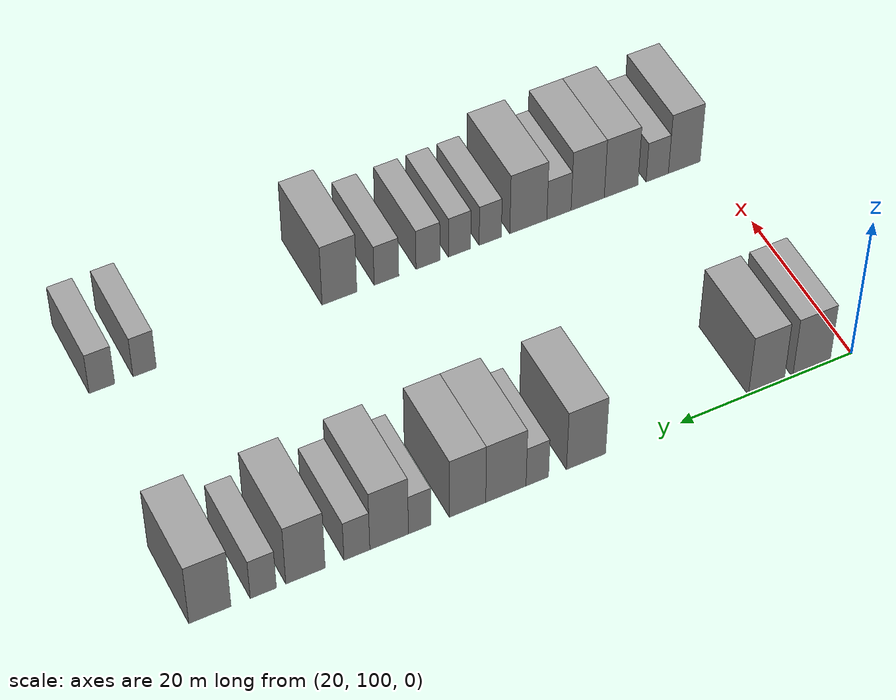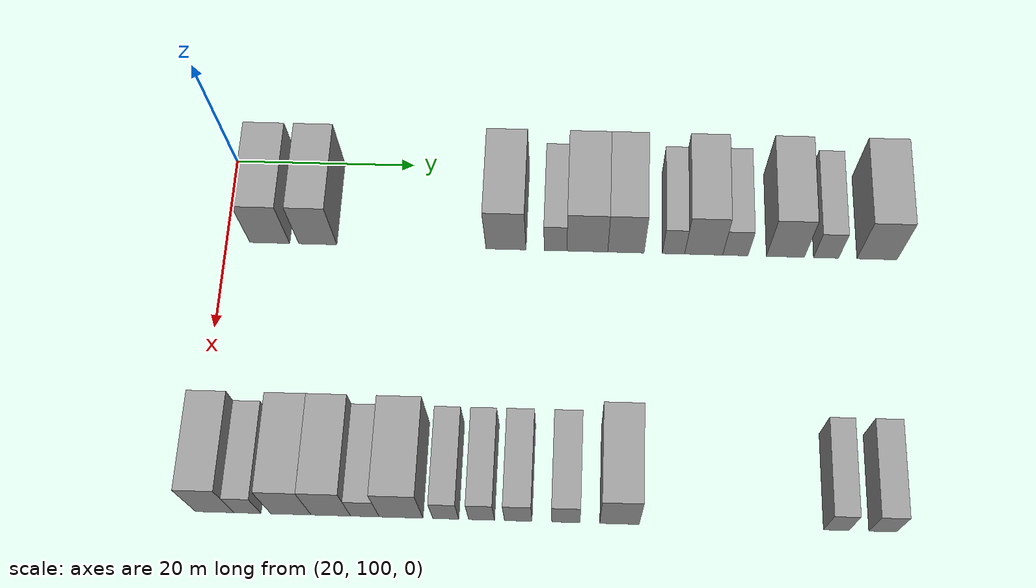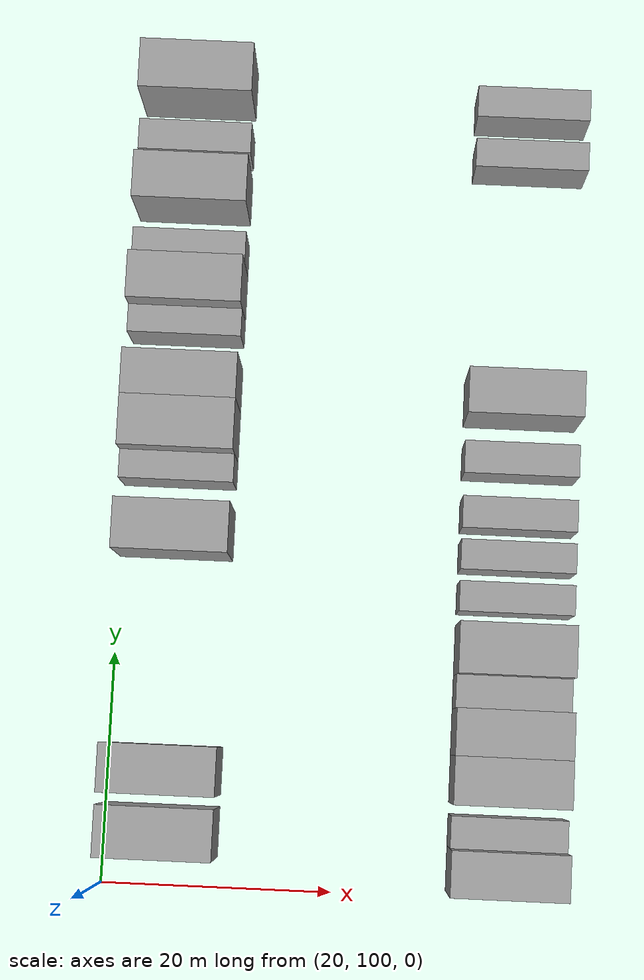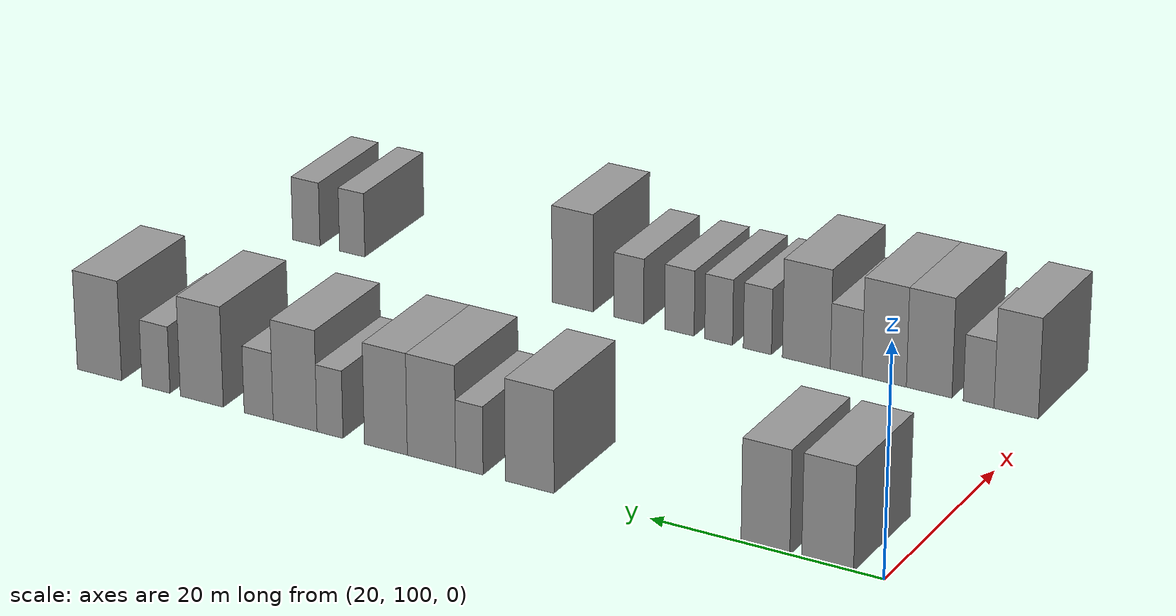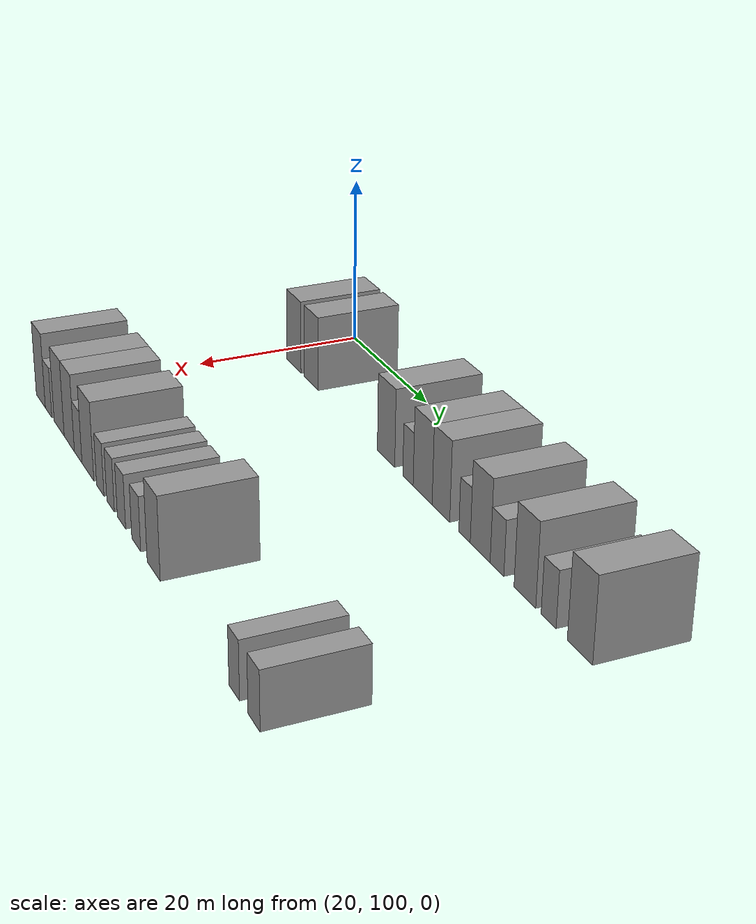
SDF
<sdf version="1.6">
 <world name="default">
  <model name="building_72">
   <static>1</static>
   <pose>25.0000 104.7903 0 0.000000 0.000000 0.000000</pose>
   <link name="link">
    <pose>0 0 4.50 0 0 0</pose>
    <collision name="collision"><geometry><box><size>10.0000 4.3861 9.0000</size></box></geometry></collision>
    <visual name="visual">
     <cast_shadows>0</cast_shadows>
     <geometry><box><size>10.0000 4.3861 9.0000</size></box></geometry>
     <material>
      <script>
       <uri>model://grey_wall/materials/scripts</uri>
       <uri>model://grey_wall/materials/textures</uri>
       <name>vrc/grey_wall</name>
      </script>
     </material>
    </visual>
   </link>
  </model>
  <model name="building_73">
   <static>1</static>
   <pose>25.0000 110.0732 0 0.000000 0.000000 0.000000</pose>
   <link name="link">
    <pose>0 0 4.50 0 0 0</pose>
    <collision name="collision"><geometry><box><size>10.0000 4.1797 9.0000</size></box></geometry></collision>
    <visual name="visual">
     <cast_shadows>0</cast_shadows>
     <geometry><box><size>10.0000 4.1797 9.0000</size></box></geometry>
     <material>
      <script>
       <uri>model://grey_wall/materials/scripts</uri>
       <uri>model://grey_wall/materials/textures</uri>
       <name>vrc/grey_wall</name>
      </script>
     </material>
    </visual>
   </link>
  </model>
  <model name="building_74">
   <static>1</static>
   <pose>25.0000 130.7508 0 0.000000 0.000000 0.000000</pose>
   <link name="link">
    <pose>0 0 4.50 0 0 0</pose>
    <collision name="collision"><geometry><box><size>10.0000 4.3918 9.0000</size></box></geometry></collision>
    <visual name="visual">
     <cast_shadows>0</cast_shadows>
     <geometry><box><size>10.0000 4.3918 9.0000</size></box></geometry>
     <material>
      <script>
       <uri>model://grey_wall/materials/scripts</uri>
       <uri>model://grey_wall/materials/textures</uri>
       <name>vrc/grey_wall</name>
      </script>
     </material>
    </visual>
   </link>
  </model>
  <model name="building_75">
   <static>1</static>
   <pose>25.0000 136.1969 0 0.000000 0.000000 0.000000</pose>
   <link name="link">
    <pose>0 0 3.00 0 0 0</pose>
    <collision name="collision"><geometry><box><size>10.0000 2.5005 6.0000</size></box></geometry></collision>
    <visual name="visual">
     <cast_shadows>0</cast_shadows>
     <geometry><box><size>10.0000 2.5005 6.0000</size></box></geometry>
     <material>
      <script>
       <uri>model://grey_wall/materials/scripts</uri>
       <uri>model://grey_wall/materials/textures</uri>
       <name>vrc/grey_wall</name>
      </script>
     </material>
    </visual>
   </link>
  </model>
  <model name="building_76">
   <static>1</static>
   <pose>25.0000 139.6686 0 0.000000 0.000000 0.000000</pose>
   <link name="link">
    <pose>0 0 4.50 0 0 0</pose>
    <collision name="collision"><geometry><box><size>10.0000 4.4429 9.0000</size></box></geometry></collision>
    <visual name="visual">
     <cast_shadows>0</cast_shadows>
     <geometry><box><size>10.0000 4.4429 9.0000</size></box></geometry>
     <material>
      <script>
       <uri>model://grey_wall/materials/scripts</uri>
       <uri>model://grey_wall/materials/textures</uri>
       <name>vrc/grey_wall</name>
      </script>
     </material>
    </visual>
   </link>
  </model>
  <model name="building_77">
   <static>1</static>
   <pose>25.0000 143.8794 0 0.000000 0.000000 0.000000</pose>
   <link name="link">
    <pose>0 0 4.50 0 0 0</pose>
    <collision name="collision"><geometry><box><size>10.0000 3.9786 9.0000</size></box></geometry></collision>
    <visual name="visual">
     <cast_shadows>0</cast_shadows>
     <geometry><box><size>10.0000 3.9786 9.0000</size></box></geometry>
     <material>
      <script>
       <uri>model://grey_wall/materials/scripts</uri>
       <uri>model://grey_wall/materials/textures</uri>
       <name>vrc/grey_wall</name>
      </script>
     </material>
    </visual>
   </link>
  </model>
  <model name="building_78">
   <static>1</static>
   <pose>25.0000 149.0896 0 0.000000 0.000000 0.000000</pose>
   <link name="link">
    <pose>0 0 3.00 0 0 0</pose>
    <collision name="collision"><geometry><box><size>10.0000 2.4418 6.0000</size></box></geometry></collision>
    <visual name="visual">
     <cast_shadows>0</cast_shadows>
     <geometry><box><size>10.0000 2.4418 6.0000</size></box></geometry>
     <material>
      <script>
       <uri>model://grey_wall/materials/scripts</uri>
       <uri>model://grey_wall/materials/textures</uri>
       <name>vrc/grey_wall</name>
      </script>
     </material>
    </visual>
   </link>
  </model>
  <model name="building_79">
   <static>1</static>
   <pose>25.0000 152.3868 0 0.000000 0.000000 0.000000</pose>
   <link name="link">
    <pose>0 0 4.50 0 0 0</pose>
    <collision name="collision"><geometry><box><size>10.0000 4.1527 9.0000</size></box></geometry></collision>
    <visual name="visual">
     <cast_shadows>0</cast_shadows>
     <geometry><box><size>10.0000 4.1527 9.0000</size></box></geometry>
     <material>
      <script>
       <uri>model://grey_wall/materials/scripts</uri>
       <uri>model://grey_wall/materials/textures</uri>
       <name>vrc/grey_wall</name>
      </script>
     </material>
    </visual>
   </link>
  </model>
  <model name="building_80">
   <static>1</static>
   <pose>25.0000 155.8482 0 0.000000 0.000000 0.000000</pose>
   <link name="link">
    <pose>0 0 3.00 0 0 0</pose>
    <collision name="collision"><geometry><box><size>10.0000 2.7701 6.0000</size></box></geometry></collision>
    <visual name="visual">
     <cast_shadows>0</cast_shadows>
     <geometry><box><size>10.0000 2.7701 6.0000</size></box></geometry>
     <material>
      <script>
       <uri>model://grey_wall/materials/scripts</uri>
       <uri>model://grey_wall/materials/textures</uri>
       <name>vrc/grey_wall</name>
      </script>
     </material>
    </visual>
   </link>
  </model>
  <model name="building_81">
   <static>1</static>
   <pose>25.0000 161.3114 0 0.000000 0.000000 0.000000</pose>
   <link name="link">
    <pose>0 0 4.50 0 0 0</pose>
    <collision name="collision"><geometry><box><size>10.0000 4.1562 9.0000</size></box></geometry></collision>
    <visual name="visual">
     <cast_shadows>0</cast_shadows>
     <geometry><box><size>10.0000 4.1562 9.0000</size></box></geometry>
     <material>
      <script>
       <uri>model://grey_wall/materials/scripts</uri>
       <uri>model://grey_wall/materials/textures</uri>
       <name>vrc/grey_wall</name>
      </script>
     </material>
    </visual>
   </link>
  </model>
  <model name="building_82">
   <static>1</static>
   <pose>25.0000 165.7562 0 0.000000 0.000000 0.000000</pose>
   <link name="link">
    <pose>0 0 3.00 0 0 0</pose>
    <collision name="collision"><geometry><box><size>10.0000 2.7334 6.0000</size></box></geometry></collision>
    <visual name="visual">
     <cast_shadows>0</cast_shadows>
     <geometry><box><size>10.0000 2.7334 6.0000</size></box></geometry>
     <material>
      <script>
       <uri>model://grey_wall/materials/scripts</uri>
       <uri>model://grey_wall/materials/textures</uri>
       <name>vrc/grey_wall</name>
      </script>
     </material>
    </visual>
   </link>
  </model>
  <model name="building_83">
   <static>1</static>
   <pose>25.0000 171.3114 0 0.000000 0.000000 0.000000</pose>
   <link name="link">
    <pose>0 0 4.50 0 0 0</pose>
    <collision name="collision"><geometry><box><size>10.0000 4.3769 9.0000</size></box></geometry></collision>
    <visual name="visual">
     <cast_shadows>0</cast_shadows>
     <geometry><box><size>10.0000 4.3769 9.0000</size></box></geometry>
     <material>
      <script>
       <uri>model://grey_wall/materials/scripts</uri>
       <uri>model://grey_wall/materials/textures</uri>
       <name>vrc/grey_wall</name>
      </script>
     </material>
    </visual>
   </link>
  </model>
  <model name="building_178">
   <static>1</static>
   <pose>55.0000 102.5852 0 0.000000 0.000000 0.000000</pose>
   <link name="link">
    <pose>0 0 4.50 0 0 0</pose>
    <collision name="collision"><geometry><box><size>10.0000 3.9094 9.0000</size></box></geometry></collision>
    <visual name="visual">
     <cast_shadows>0</cast_shadows>
     <geometry><box><size>10.0000 3.9094 9.0000</size></box></geometry>
     <material>
      <script>
       <uri>model://grey_wall/materials/scripts</uri>
       <uri>model://grey_wall/materials/textures</uri>
       <name>vrc/grey_wall</name>
      </script>
     </material>
    </visual>
   </link>
  </model>
  <model name="building_179">
   <static>1</static>
   <pose>55.0000 105.9098 0 0.000000 0.000000 0.000000</pose>
   <link name="link">
    <pose>0 0 3.00 0 0 0</pose>
    <collision name="collision"><geometry><box><size>10.0000 2.7397 6.0000</size></box></geometry></collision>
    <visual name="visual">
     <cast_shadows>0</cast_shadows>
     <geometry><box><size>10.0000 2.7397 6.0000</size></box></geometry>
     <material>
      <script>
       <uri>model://grey_wall/materials/scripts</uri>
       <uri>model://grey_wall/materials/textures</uri>
       <name>vrc/grey_wall</name>
      </script>
     </material>
    </visual>
   </link>
  </model>
  <model name="building_180">
   <static>1</static>
   <pose>55.0000 110.3261 0 0.000000 0.000000 0.000000</pose>
   <link name="link">
    <pose>0 0 4.50 0 0 0</pose>
    <collision name="collision"><geometry><box><size>10.0000 4.0930 9.0000</size></box></geometry></collision>
    <visual name="visual">
     <cast_shadows>0</cast_shadows>
     <geometry><box><size>10.0000 4.0930 9.0000</size></box></geometry>
     <material>
      <script>
       <uri>model://grey_wall/materials/scripts</uri>
       <uri>model://grey_wall/materials/textures</uri>
       <name>vrc/grey_wall</name>
      </script>
     </material>
    </visual>
   </link>
  </model>
  <model name="building_181">
   <static>1</static>
   <pose>55.0000 114.3791 0 0.000000 0.000000 0.000000</pose>
   <link name="link">
    <pose>0 0 4.50 0 0 0</pose>
    <collision name="collision"><geometry><box><size>10.0000 4.0128 9.0000</size></box></geometry></collision>
    <visual name="visual">
     <cast_shadows>0</cast_shadows>
     <geometry><box><size>10.0000 4.0128 9.0000</size></box></geometry>
     <material>
      <script>
       <uri>model://grey_wall/materials/scripts</uri>
       <uri>model://grey_wall/materials/textures</uri>
       <name>vrc/grey_wall</name>
      </script>
     </material>
    </visual>
   </link>
  </model>
  <model name="building_182">
   <static>1</static>
   <pose>55.0000 117.8353 0 0.000000 0.000000 0.000000</pose>
   <link name="link">
    <pose>0 0 3.00 0 0 0</pose>
    <collision name="collision"><geometry><box><size>10.0000 2.8996 6.0000</size></box></geometry></collision>
    <visual name="visual">
     <cast_shadows>0</cast_shadows>
     <geometry><box><size>10.0000 2.8996 6.0000</size></box></geometry>
     <material>
      <script>
       <uri>model://grey_wall/materials/scripts</uri>
       <uri>model://grey_wall/materials/textures</uri>
       <name>vrc/grey_wall</name>
      </script>
     </material>
    </visual>
   </link>
  </model>
  <model name="building_183">
   <static>1</static>
   <pose>55.0000 121.4937 0 0.000000 0.000000 0.000000</pose>
   <link name="link">
    <pose>0 0 4.50 0 0 0</pose>
    <collision name="collision"><geometry><box><size>10.0000 4.4171 9.0000</size></box></geometry></collision>
    <visual name="visual">
     <cast_shadows>0</cast_shadows>
     <geometry><box><size>10.0000 4.4171 9.0000</size></box></geometry>
     <material>
      <script>
       <uri>model://grey_wall/materials/scripts</uri>
       <uri>model://grey_wall/materials/textures</uri>
       <name>vrc/grey_wall</name>
      </script>
     </material>
    </visual>
   </link>
  </model>
  <model name="building_184">
   <static>1</static>
   <pose>55.0000 126.0156 0 0.000000 0.000000 0.000000</pose>
   <link name="link">
    <pose>0 0 3.00 0 0 0</pose>
    <collision name="collision"><geometry><box><size>10.0000 2.6268 6.0000</size></box></geometry></collision>
    <visual name="visual">
     <cast_shadows>0</cast_shadows>
     <geometry><box><size>10.0000 2.6268 6.0000</size></box></geometry>
     <material>
      <script>
       <uri>model://grey_wall/materials/scripts</uri>
       <uri>model://grey_wall/materials/textures</uri>
       <name>vrc/grey_wall</name>
      </script>
     </material>
    </visual>
   </link>
  </model>
  <model name="building_185">
   <static>1</static>
   <pose>55.0000 129.6344 0 0.000000 0.000000 0.000000</pose>
   <link name="link">
    <pose>0 0 3.00 0 0 0</pose>
    <collision name="collision"><geometry><box><size>10.0000 2.6108 6.0000</size></box></geometry></collision>
    <visual name="visual">
     <cast_shadows>0</cast_shadows>
     <geometry><box><size>10.0000 2.6108 6.0000</size></box></geometry>
     <material>
      <script>
       <uri>model://grey_wall/materials/scripts</uri>
       <uri>model://grey_wall/materials/textures</uri>
       <name>vrc/grey_wall</name>
      </script>
     </material>
    </visual>
   </link>
  </model>
  <model name="building_186">
   <static>1</static>
   <pose>55.0000 133.3300 0 0.000000 0.000000 0.000000</pose>
   <link name="link">
    <pose>0 0 3.00 0 0 0</pose>
    <collision name="collision"><geometry><box><size>10.0000 2.7804 6.0000</size></box></geometry></collision>
    <visual name="visual">
     <cast_shadows>0</cast_shadows>
     <geometry><box><size>10.0000 2.7804 6.0000</size></box></geometry>
     <material>
      <script>
       <uri>model://grey_wall/materials/scripts</uri>
       <uri>model://grey_wall/materials/textures</uri>
       <name>vrc/grey_wall</name>
      </script>
     </material>
    </visual>
   </link>
  </model>
  <model name="building_187">
   <static>1</static>
   <pose>55.0000 138.1407 0 0.000000 0.000000 0.000000</pose>
   <link name="link">
    <pose>0 0 3.00 0 0 0</pose>
    <collision name="collision"><geometry><box><size>10.0000 2.8410 6.0000</size></box></geometry></collision>
    <visual name="visual">
     <cast_shadows>0</cast_shadows>
     <geometry><box><size>10.0000 2.8410 6.0000</size></box></geometry>
     <material>
      <script>
       <uri>model://grey_wall/materials/scripts</uri>
       <uri>model://grey_wall/materials/textures</uri>
       <name>vrc/grey_wall</name>
      </script>
     </material>
    </visual>
   </link>
  </model>
  <model name="building_188">
   <static>1</static>
   <pose>55.0000 143.5503 0 0.000000 0.000000 0.000000</pose>
   <link name="link">
    <pose>0 0 4.50 0 0 0</pose>
    <collision name="collision"><geometry><box><size>10.0000 3.9782 9.0000</size></box></geometry></collision>
    <visual name="visual">
     <cast_shadows>0</cast_shadows>
     <geometry><box><size>10.0000 3.9782 9.0000</size></box></geometry>
     <material>
      <script>
       <uri>model://grey_wall/materials/scripts</uri>
       <uri>model://grey_wall/materials/textures</uri>
       <name>vrc/grey_wall</name>
      </script>
     </material>
    </visual>
   </link>
  </model>
  <model name="building_189">
   <static>1</static>
   <pose>55.0000 165.3817 0 0.000000 0.000000 0.000000</pose>
   <link name="link">
    <pose>0 0 3.00 0 0 0</pose>
    <collision name="collision"><geometry><box><size>10.0000 2.5616 6.0000</size></box></geometry></collision>
    <visual name="visual">
     <cast_shadows>0</cast_shadows>
     <geometry><box><size>10.0000 2.5616 6.0000</size></box></geometry>
     <material>
      <script>
       <uri>model://grey_wall/materials/scripts</uri>
       <uri>model://grey_wall/materials/textures</uri>
       <name>vrc/grey_wall</name>
      </script>
     </material>
    </visual>
   </link>
  </model>
  <model name="building_190">
   <static>1</static>
   <pose>55.0000 170.0568 0 0.000000 0.000000 0.000000</pose>
   <link name="link">
    <pose>0 0 3.00 0 0 0</pose>
    <collision name="collision"><geometry><box><size>10.0000 2.7886 6.0000</size></box></geometry></collision>
    <visual name="visual">
     <cast_shadows>0</cast_shadows>
     <geometry><box><size>10.0000 2.7886 6.0000</size></box></geometry>
     <material>
      <script>
       <uri>model://grey_wall/materials/scripts</uri>
       <uri>model://grey_wall/materials/textures</uri>
       <name>vrc/grey_wall</name>
      </script>
     </material>
    </visual>
   </link>
  </model>
 </world>
</sdf>
